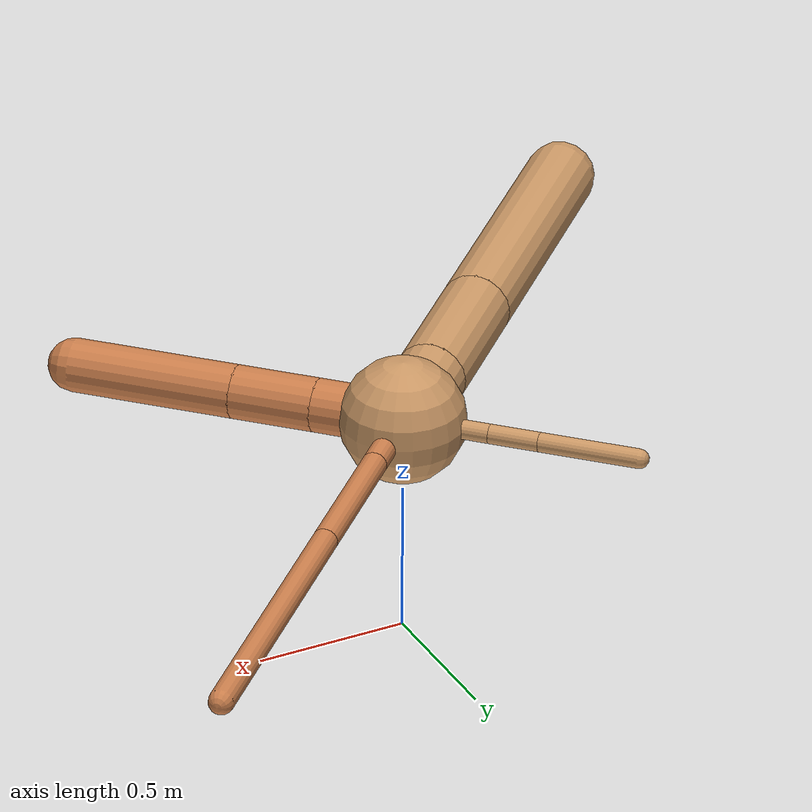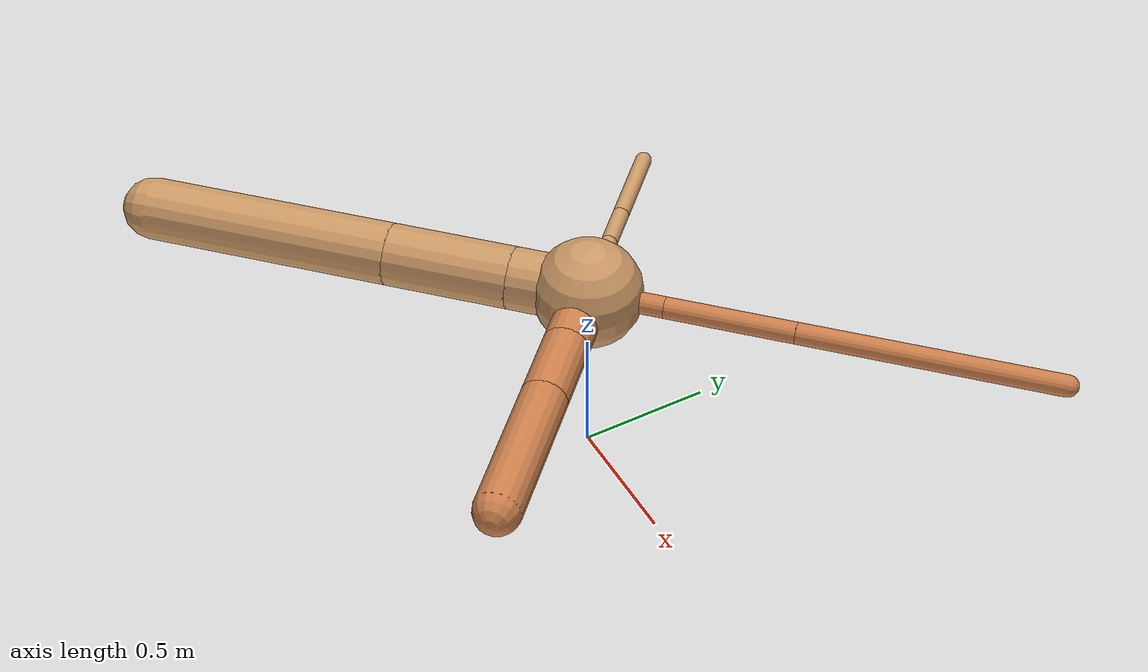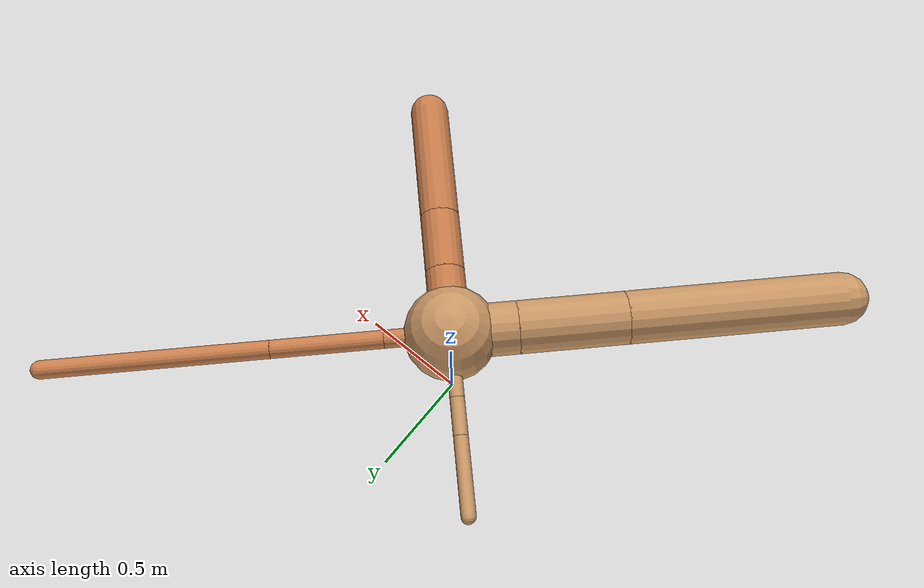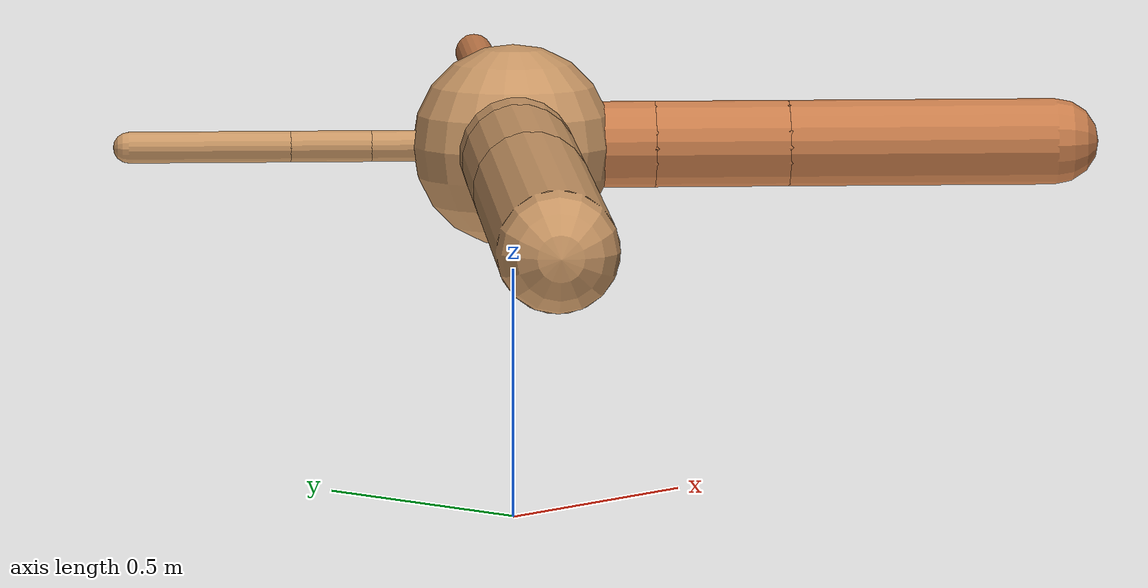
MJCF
<?xml version="1.0" ?>
<mujoco model="ant">

	<compiler angle="degree" coordinate="local" inertiafromgeom="true"/>

	<option integrator="RK4" timestep="0.01"/>

	<custom>

		<numeric data="0.0 0.0 0.55 1.0 0.0 0.0 0.0 0.0 1.0 0.0 -1.0 0.0 -1.0 0.0 1.0" name="init_qpos"/>

	</custom>

	<default>

		<joint armature="1" damping="1" limited="true"/>

		<geom conaffinity="0" condim="3" density="5.0" friction="1.5 0.1 0.1" margin="0.01" rgba="0.8 0.6 0.4 1"/>

	</default>

	<worldbody>

		<body name="torso" pos="0 0 0.75">

			<geom name="torso_geom" pos="0 0 0" size="0.20210094045549182" type="sphere"/>

			<!--joint armature="0" damping="0" limited="false" margin="0.01" name="root" pos="0 0 0" type="free"/-->

			<body name="front_left_leg" pos="0 0 0">

				<geom fromto="0 0 0 0.2 0.2 0" name="aux_1_geom" size="0.039585935463829304" type="capsule" rgba=".8 .5 .3 1"/>

				<body name="aux_1" pos="0.2 0.2 0">

					<joint axis="0 0 1" name="hip_1" pos="0.0 0.0 0.0" range="-40 40" type="hinge"/>

					<geom fromto="0 0 0 0.3373077994861402 0.3373077994861402 0" name="left_leg_geom" size="0.039585935463829304" type="capsule" rgba=".8 .5 .3 1"/>

					<body pos="0.3373077994861402 0.3373077994861402 0" name="front_left_foot">

						<joint axis="-1 1 0" name="ankle_1" pos="0.0 0.0 0.0" range="30 100" type="hinge"/>

						<geom fromto="0 0 0 0.6746155989722804 0.6746155989722804 0" name="left_ankle_geom" size="0.039585935463829304" type="capsule" rgba=".8 .5 .3 1"/>

					</body>

				</body>

			</body>

			<body name="front_right_leg" pos="0 0 0">

				<geom fromto="0 0 0 -0.2 0.2 0" name="aux_2_geom" size="0.0310907149061869" type="capsule"/>

				<body name="aux_2" pos="-0.2 0.2 0">

					<joint axis="0 0 1" name="hip_2" pos="0.0 0.0 0.0" range="-40 40" type="hinge"/>

					<geom fromto="0 0 0 -0.11408701579725725 0.11408701579725725 0" name="right_leg_geom" size="0.0310907149061869" type="capsule"/>

					<body pos="-0.11408701579725725 0.11408701579725725 0" name="front_right_foot">

						<joint axis="1 1 0" name="ankle_2" pos="0.0 0.0 0.0" range="-100 -30" type="hinge"/>

						<geom fromto="0 0 0 -0.2281740315945145 0.2281740315945145 0" name="right_ankle_geom" size="0.0310907149061869" type="capsule"/>

					</body>

				</body>

			</body>

			<body name="left_back_leg" pos="0 0 0">

				<geom fromto="0 0 0 -0.2 -0.2 0" name="aux_3_geom" size="0.11473957823327649" type="capsule"/>

				<body name="aux_3" pos="-0.2 -0.2 0">

					<joint axis="0 0 1" name="hip_3" pos="0.0 0.0 0.0" range="-40 40" type="hinge"/>

					<geom fromto="0 0 0 -0.3276635927947177 -0.3276635927947177 0" name="back_leg_geom" size="0.11473957823327649" type="capsule"/>

					<body pos="-0.3276635927947177 -0.3276635927947177 0" name="left_back_foot">

						<joint axis="-1 1 0" name="ankle_3" pos="0.0 0.0 0.0" range="-100 -30" type="hinge"/>

						<geom fromto="0 0 0 -0.6553271855894354 -0.6553271855894354 0" name="third_ankle_geom" size="0.11473957823327649" type="capsule"/>

					</body>

				</body>

			</body>

			<body name="right_back_leg" pos="0 0 0">

				<geom fromto="0 0 0 0.2 -0.2 0" name="aux_4_geom" size="0.08596111628012267" type="capsule" rgba=".8 .5 .3 1"/>

				<body name="aux_4" pos="0.2 -0.2 0">

					<joint axis="0 0 1" name="hip_4" pos="0.0 0.0 0.0" range="-40 40" type="hinge"/>

					<geom fromto="0 0 0 0.1897809700838533 -0.1897809700838533 0" name="rightback_leg_geom" size="0.08596111628012267" type="capsule" rgba=".8 .5 .3 1"/>

					<body pos="0.1897809700838533 -0.1897809700838533 0" name="right_back_foot">

						<joint axis="1 1 0" name="ankle_4" pos="0.0 0.0 0.0" range="30 100" type="hinge"/>

						<geom fromto="0 0 0 0.3795619401677066 -0.3795619401677066 0" name="fourth_ankle_geom" size="0.08596111628012267" type="capsule" rgba=".8 .5 .3 1"/>

					</body>

				</body>

			</body>

		</body>

	</worldbody>

	<actuator>

		<motor ctrllimited="true" ctrlrange="-1.0 1.0" joint="hip_4" gear="150"/>

		<motor ctrllimited="true" ctrlrange="-1.0 1.0" joint="ankle_4" gear="150"/>

		<motor ctrllimited="true" ctrlrange="-1.0 1.0" joint="hip_1" gear="150"/>

		<motor ctrllimited="true" ctrlrange="-1.0 1.0" joint="ankle_1" gear="150"/>

		<motor ctrllimited="true" ctrlrange="-1.0 1.0" joint="hip_2" gear="150"/>

		<motor ctrllimited="true" ctrlrange="-1.0 1.0" joint="ankle_2" gear="150"/>

		<motor ctrllimited="true" ctrlrange="-1.0 1.0" joint="hip_3" gear="150"/>

		<motor ctrllimited="true" ctrlrange="-1.0 1.0" joint="ankle_3" gear="150"/>

	</actuator>

</mujoco>
